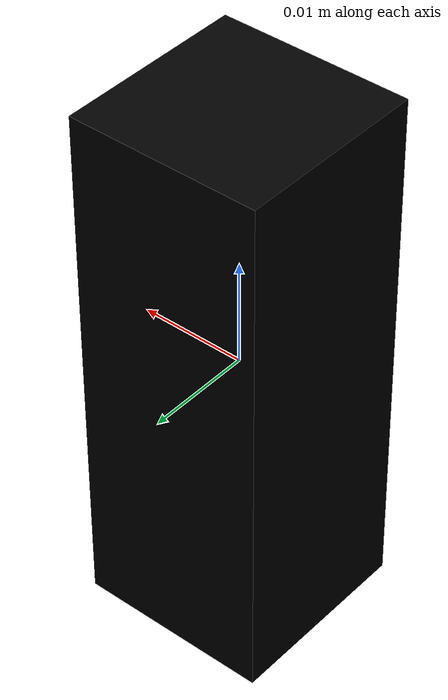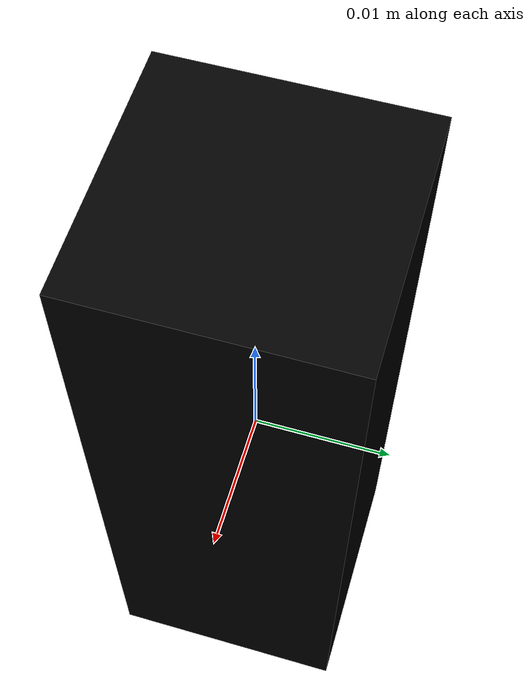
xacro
<?xml version="1.0"?>

<robot xmlns:xacro="http://www.ros.org/wiki/xacro"
    name="peg">

    <link name="base_peg">
      <visual>
        <geometry>
          <box size="0.018 0.018 0.05"/>
        </geometry>
        <material name="Black">
          <color rgba="0 0 0 1.0"/>
        </material>
      </visual>
      <collision>
        <geometry>
          <box size="0.018 0.018 0.05"/>
        </geometry>
      </collision>
      <inertial>
         <mass value="0.01" />
         <inertia ixx="0.0005" ixy="0.0" ixz="0.0"
                  iyy="0.0005" iyz="0.0"
                  izz="0.0005" />

        <origin xyz="0 0.0 0.0" rpy="0  0  0" />
      </inertial>
    </link>
</robot>
